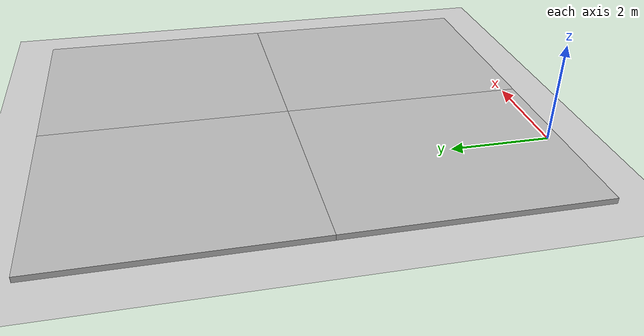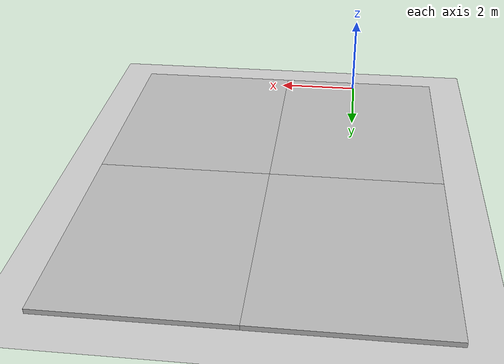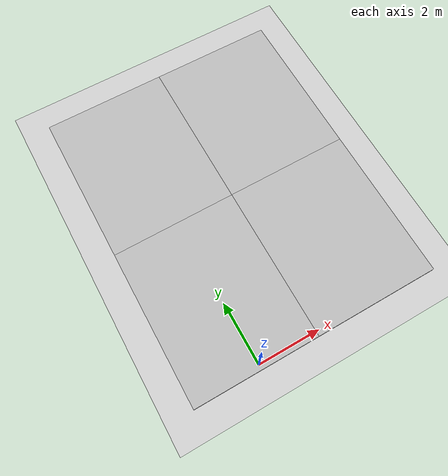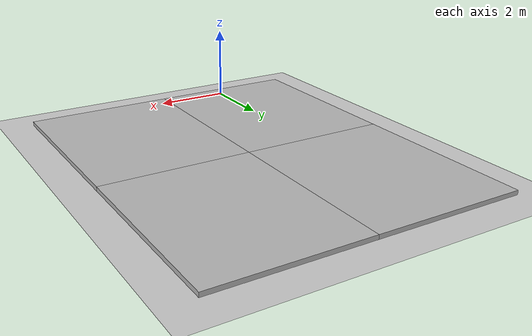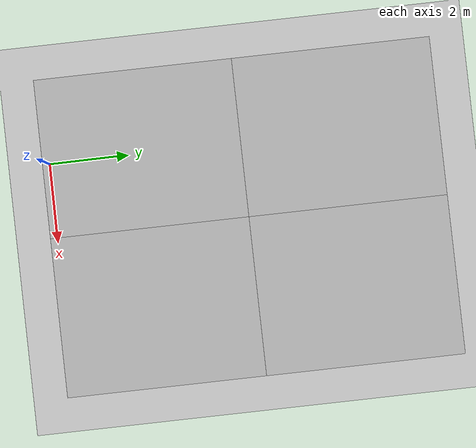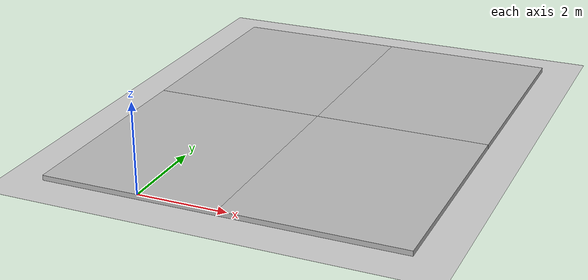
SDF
<sdf version="1.6">
 <world name="default">
  <model name="ground_plane">
   <static>1</static>
   <link name="link">
    <collision name="collision">
     <geometry><plane><normal>0 0 1</normal><size>100 100</size></plane></geometry>
     <surface><friction><ode><mu>100</mu><mu2>50</mu2></ode></friction></surface>
    </collision>
    <visual name="visual">
     <cast_shadows>0</cast_shadows>
     <geometry><plane><normal>0 0 1</normal><size>100 100</size></plane></geometry>
     <material>
      <script><uri>file://media/materials/scripts/gazebo.material</uri><name>Gazebo/Grey</name></script>
     </material>
    </visual>
   </link>
  </model>
  <model name="small_plant_0">
   <pose>4 2.00183 -5886.19 0 -0 0</pose>
   <link name="link_0">
    <pose>4 2.00183 0.110674 0 -0 0</pose>
    <inertial>
     <inertia><ixx>1</ixx><ixy>0</ixy><ixz>0</ixz><iyy>1</iyy><iyz>0</iyz><izz>1</izz></inertia>
     <mass>1</mass>
    </inertial>
   </link>
  </model>
  <model name="small_plant_1">
   <pose>4.2027 2.00204 -5886.19 0 -0 0</pose>
   <link name="link_0">
    <pose>4.2027 2.00204 0.110674 0 -0 0</pose>
    <inertial>
     <inertia><ixx>1</ixx><ixy>0</ixy><ixz>0</ixz><iyy>1</iyy><iyz>0</iyz><izz>1</izz></inertia>
     <mass>1</mass>
    </inertial>
   </link>
  </model>
  <model name="small_plant_2">
   <pose>4.40541 2.00441 -5885.85 0 -0 0</pose>
   <link name="link_0">
    <pose>4.40541 2.00441 0.110674 0 -0 0</pose>
    <inertial>
     <inertia><ixx>1</ixx><ixy>0</ixy><ixz>0</ixz><iyy>1</iyy><iyz>0</iyz><izz>1</izz></inertia>
     <mass>1</mass>
    </inertial>
   </link>
  </model>
  <model name="small_plant_3">
   <pose>4.60811 2.00125 -5885.51 0 -0 0</pose>
   <link name="link_0">
    <pose>4.60811 2.00125 0.110674 0 -0 0</pose>
    <inertial>
     <inertia><ixx>1</ixx><ixy>0</ixy><ixz>0</ixz><iyy>1</iyy><iyz>0</iyz><izz>1</izz></inertia>
     <mass>1</mass>
    </inertial>
   </link>
  </model>
  <model name="small_plant_4">
   <pose>4.81081 2.00254 -5885.17 0 -0 0</pose>
   <link name="link_0">
    <pose>4.81081 2.00254 0.110674 0 -0 0</pose>
    <inertial>
     <inertia><ixx>1</ixx><ixy>0</ixy><ixz>0</ixz><iyy>1</iyy><iyz>0</iyz><izz>1</izz></inertia>
     <mass>1</mass>
    </inertial>
   </link>
  </model>
  <model name="small_plant_5">
   <pose>5.01351 2.00033 -5884.83 0 -0 0</pose>
   <link name="link_0">
    <pose>5.01351 2.00033 0.110674 0 -0 0</pose>
    <inertial>
     <inertia><ixx>1</ixx><ixy>0</ixy><ixz>0</ixz><iyy>1</iyy><iyz>0</iyz><izz>1</izz></inertia>
     <mass>1</mass>
    </inertial>
   </link>
  </model>
  <model name="small_plant_6">
   <pose>5.21622 2.00339 -5884.83 0 -0 0</pose>
   <link name="link_0">
    <pose>5.21622 2.00339 0.110674 0 -0 0</pose>
    <inertial>
     <inertia><ixx>1</ixx><ixy>0</ixy><ixz>0</ixz><iyy>1</iyy><iyz>0</iyz><izz>1</izz></inertia>
     <mass>1</mass>
    </inertial>
   </link>
  </model>
  <model name="small_plant_7">
   <pose>5.41892 2.00548 -5884.83 0 -0 0</pose>
   <link name="link_0">
    <pose>5.41892 2.00548 0.110674 0 -0 0</pose>
    <inertial>
     <inertia><ixx>1</ixx><ixy>0</ixy><ixz>0</ixz><iyy>1</iyy><iyz>0</iyz><izz>1</izz></inertia>
     <mass>1</mass>
    </inertial>
   </link>
  </model>
  <model name="small_plant_8">
   <pose>5.62162 2.00516 -5884.49 0 -0 0</pose>
   <link name="link_0">
    <pose>5.62162 2.00516 0.110674 0 -0 0</pose>
    <inertial>
     <inertia><ixx>1</ixx><ixy>0</ixy><ixz>0</ixz><iyy>1</iyy><iyz>0</iyz><izz>1</izz></inertia>
     <mass>1</mass>
    </inertial>
   </link>
  </model>
  <model name="small_plant_9">
   <pose>5.82432 2.00312 -5884.49 0 -0 0</pose>
   <link name="link_0">
    <pose>5.82432 2.00312 0.110674 0 -0 0</pose>
    <inertial>
     <inertia><ixx>1</ixx><ixy>0</ixy><ixz>0</ixz><iyy>1</iyy><iyz>0</iyz><izz>1</izz></inertia>
     <mass>1</mass>
    </inertial>
   </link>
  </model>
  <model name="small_plant_10">
   <pose>6.02703 2.00351 -5886.19 0 -0 0</pose>
   <link name="link_0">
    <pose>6.02703 2.00351 0.110674 0 -0 0</pose>
    <inertial>
     <inertia><ixx>1</ixx><ixy>0</ixy><ixz>0</ixz><iyy>1</iyy><iyz>0</iyz><izz>1</izz></inertia>
     <mass>1</mass>
    </inertial>
   </link>
  </model>
  <model name="small_plant_75">
   <pose>4 2.70716 -5884.83 0 -0 0</pose>
   <link name="link_0">
    <pose>4 2.70716 0.110674 0 -0 0</pose>
    <inertial>
     <inertia><ixx>1</ixx><ixy>0</ixy><ixz>0</ixz><iyy>1</iyy><iyz>0</iyz><izz>1</izz></inertia>
     <mass>1</mass>
    </inertial>
   </link>
  </model>
  <model name="small_plant_76">
   <pose>4.2027 2.70205 -5884.49 0 -0 0</pose>
   <link name="link_0">
    <pose>4.2027 2.70205 0.110674 0 -0 0</pose>
    <inertial>
     <inertia><ixx>1</ixx><ixy>0</ixy><ixz>0</ixz><iyy>1</iyy><iyz>0</iyz><izz>1</izz></inertia>
     <mass>1</mass>
    </inertial>
   </link>
  </model>
  <model name="small_plant_77">
   <pose>4.40541 2.70926 -5884.49 0 -0 0</pose>
   <link name="link_0">
    <pose>4.40541 2.70926 0.110674 0 -0 0</pose>
    <inertial>
     <inertia><ixx>1</ixx><ixy>0</ixy><ixz>0</ixz><iyy>1</iyy><iyz>0</iyz><izz>1</izz></inertia>
     <mass>1</mass>
    </inertial>
   </link>
  </model>
  <model name="small_plant_78">
   <pose>4.60811 2.70181 -5884.49 0 -0 0</pose>
   <link name="link_0">
    <pose>4.60811 2.70181 0.110674 0 -0 0</pose>
    <inertial>
     <inertia><ixx>1</ixx><ixy>0</ixy><ixz>0</ixz><iyy>1</iyy><iyz>0</iyz><izz>1</izz></inertia>
     <mass>1</mass>
    </inertial>
   </link>
  </model>
  <model name="small_plant_79">
   <pose>4.81081 2.70347 -5884.49 0 -0 0</pose>
   <link name="link_0">
    <pose>4.81081 2.70347 0.110674 0 -0 0</pose>
    <inertial>
     <inertia><ixx>1</ixx><ixy>0</ixy><ixz>0</ixz><iyy>1</iyy><iyz>0</iyz><izz>1</izz></inertia>
     <mass>1</mass>
    </inertial>
   </link>
  </model>
  <model name="small_plant_80">
   <pose>5.01351 2.70742 -5884.49 0 -0 0</pose>
   <link name="link_0">
    <pose>5.01351 2.70742 0.110674 0 -0 0</pose>
    <inertial>
     <inertia><ixx>1</ixx><ixy>0</ixy><ixz>0</ixz><iyy>1</iyy><iyz>0</iyz><izz>1</izz></inertia>
     <mass>1</mass>
    </inertial>
   </link>
  </model>
  <model name="small_plant_81">
   <pose>5.21622 2.70363 -5884.49 0 -0 0</pose>
   <link name="link_0">
    <pose>5.21622 2.70363 0.110674 0 -0 0</pose>
    <inertial>
     <inertia><ixx>1</ixx><ixy>0</ixy><ixz>0</ixz><iyy>1</iyy><iyz>0</iyz><izz>1</izz></inertia>
     <mass>1</mass>
    </inertial>
   </link>
  </model>
  <model name="small_plant_82">
   <pose>5.41892 2.70119 -5884.49 0 -0 0</pose>
   <link name="link_0">
    <pose>5.41892 2.70119 0.110674 0 -0 0</pose>
    <inertial>
     <inertia><ixx>1</ixx><ixy>0</ixy><ixz>0</ixz><iyy>1</iyy><iyz>0</iyz><izz>1</izz></inertia>
     <mass>1</mass>
    </inertial>
   </link>
  </model>
  <model name="small_plant_83">
   <pose>5.62162 2.70089 -5884.49 0 -0 0</pose>
   <link name="link_0">
    <pose>5.62162 2.70089 0.110674 0 -0 0</pose>
    <inertial>
     <inertia><ixx>1</ixx><ixy>0</ixy><ixz>0</ixz><iyy>1</iyy><iyz>0</iyz><izz>1</izz></inertia>
     <mass>1</mass>
    </inertial>
   </link>
  </model>
  <model name="small_plant_84">
   <pose>5.82432 2.70942 -5884.49 0 -0 0</pose>
   <link name="link_0">
    <pose>5.82432 2.70942 0.110674 0 -0 0</pose>
    <inertial>
     <inertia><ixx>1</ixx><ixy>0</ixy><ixz>0</ixz><iyy>1</iyy><iyz>0</iyz><izz>1</izz></inertia>
     <mass>1</mass>
    </inertial>
   </link>
  </model>
  <model name="small_plant_85">
   <pose>6.02703 2.70123 -5884.49 0 -0 0</pose>
   <link name="link_0">
    <pose>6.02703 2.70123 0.110674 0 -0 0</pose>
    <inertial>
     <inertia><ixx>1</ixx><ixy>0</ixy><ixz>0</ixz><iyy>1</iyy><iyz>0</iyz><izz>1</izz></inertia>
     <mass>1</mass>
    </inertial>
   </link>
  </model>
  <model name="small_plant_150">
   <pose>4 3.40457 -5886.19 0 -0 0</pose>
   <link name="link_0">
    <pose>4 3.40457 0.110674 0 -0 0</pose>
    <inertial>
     <inertia><ixx>1</ixx><ixy>0</ixy><ixz>0</ixz><iyy>1</iyy><iyz>0</iyz><izz>1</izz></inertia>
     <mass>1</mass>
    </inertial>
   </link>
  </model>
  <model name="small_plant_151">
   <pose>4.2027 3.40583 -5886.19 0 -0 0</pose>
   <link name="link_0">
    <pose>4.2027 3.40583 0.110674 0 -0 0</pose>
    <inertial>
     <inertia><ixx>1</ixx><ixy>0</ixy><ixz>0</ixz><iyy>1</iyy><iyz>0</iyz><izz>1</izz></inertia>
     <mass>1</mass>
    </inertial>
   </link>
  </model>
  <model name="small_plant_152">
   <pose>4.40541 3.40168 -5886.19 0 -0 0</pose>
   <link name="link_0">
    <pose>4.40541 3.40168 0.110674 0 -0 0</pose>
    <inertial>
     <inertia><ixx>1</ixx><ixy>0</ixy><ixz>0</ixz><iyy>1</iyy><iyz>0</iyz><izz>1</izz></inertia>
     <mass>1</mass>
    </inertial>
   </link>
  </model>
  <model name="small_plant_153">
   <pose>4.60811 3.40209 -5886.19 0 -0 0</pose>
   <link name="link_0">
    <pose>4.60811 3.40209 0.110674 0 -0 0</pose>
    <inertial>
     <inertia><ixx>1</ixx><ixy>0</ixy><ixz>0</ixz><iyy>1</iyy><iyz>0</iyz><izz>1</izz></inertia>
     <mass>1</mass>
    </inertial>
   </link>
  </model>
  <model name="small_plant_154">
   <pose>4.81081 3.40303 -5886.19 0 -0 0</pose>
   <link name="link_0">
    <pose>4.81081 3.40303 0.110674 0 -0 0</pose>
    <inertial>
     <inertia><ixx>1</ixx><ixy>0</ixy><ixz>0</ixz><iyy>1</iyy><iyz>0</iyz><izz>1</izz></inertia>
     <mass>1</mass>
    </inertial>
   </link>
  </model>
  <model name="small_plant_155">
   <pose>5.01351 3.40387 -5886.19 0 -0 0</pose>
   <link name="link_0">
    <pose>5.01351 3.40387 0.110674 0 -0 0</pose>
    <inertial>
     <inertia><ixx>1</ixx><ixy>0</ixy><ixz>0</ixz><iyy>1</iyy><iyz>0</iyz><izz>1</izz></inertia>
     <mass>1</mass>
    </inertial>
   </link>
  </model>
  <model name="small_plant_156">
   <pose>5.21622 3.4012 -5886.19 0 -0 0</pose>
   <link name="link_0">
    <pose>5.21622 3.4012 0.110674 0 -0 0</pose>
    <inertial>
     <inertia><ixx>1</ixx><ixy>0</ixy><ixz>0</ixz><iyy>1</iyy><iyz>0</iyz><izz>1</izz></inertia>
     <mass>1</mass>
    </inertial>
   </link>
  </model>
  <model name="small_plant_157">
   <pose>5.41892 3.40115 -5885.85 0 -0 0</pose>
   <link name="link_0">
    <pose>5.41892 3.40115 0.110674 0 -0 0</pose>
    <inertial>
     <inertia><ixx>1</ixx><ixy>0</ixy><ixz>0</ixz><iyy>1</iyy><iyz>0</iyz><izz>1</izz></inertia>
     <mass>1</mass>
    </inertial>
   </link>
  </model>
  <model name="small_plant_158">
   <pose>5.62162 3.4 -5885.85 0 -0 0</pose>
   <link name="link_0">
    <pose>5.62162 3.4 0.110674 0 -0 0</pose>
    <inertial>
     <inertia><ixx>1</ixx><ixy>0</ixy><ixz>0</ixz><iyy>1</iyy><iyz>0</iyz><izz>1</izz></inertia>
     <mass>1</mass>
    </inertial>
   </link>
  </model>
  <model name="small_plant_159">
   <pose>5.82432 3.40389 -5885.85 0 -0 0</pose>
   <link name="link_0">
    <pose>5.82432 3.40389 0.110674 0 -0 0</pose>
    <inertial>
     <inertia><ixx>1</ixx><ixy>0</ixy><ixz>0</ixz><iyy>1</iyy><iyz>0</iyz><izz>1</izz></inertia>
     <mass>1</mass>
    </inertial>
   </link>
  </model>
  <model name="small_plant_160">
   <pose>6.02703 3.4002 -5885.85 0 -0 0</pose>
   <link name="link_0">
    <pose>6.02703 3.4002 0.110674 0 -0 0</pose>
    <inertial>
     <inertia><ixx>1</ixx><ixy>0</ixy><ixz>0</ixz><iyy>1</iyy><iyz>0</iyz><izz>1</izz></inertia>
     <mass>1</mass>
    </inertial>
   </link>
  </model>
  <model name="small_plant_225">
   <pose>4 4.10625 -5886.1 0 -0 0</pose>
   <link name="link_0">
    <pose>4 4.10625 0.110674 0 -0 0</pose>
    <inertial>
     <inertia><ixx>1</ixx><ixy>0</ixy><ixz>0</ixz><iyy>1</iyy><iyz>0</iyz><izz>1</izz></inertia>
     <mass>1</mass>
    </inertial>
   </link>
  </model>
  <model name="small_plant_226">
   <pose>4.2027 4.10245 -5886.1 0 -0 0</pose>
   <link name="link_0">
    <pose>4.2027 4.10245 0.110674 0 -0 0</pose>
    <inertial>
     <inertia><ixx>1</ixx><ixy>0</ixy><ixz>0</ixz><iyy>1</iyy><iyz>0</iyz><izz>1</izz></inertia>
     <mass>1</mass>
    </inertial>
   </link>
  </model>
  <model name="small_plant_227">
   <pose>4.40541 4.10688 -5886.1 0 -0 0</pose>
   <link name="link_0">
    <pose>4.40541 4.10688 0.110674 0 -0 0</pose>
    <inertial>
     <inertia><ixx>1</ixx><ixy>0</ixy><ixz>0</ixz><iyy>1</iyy><iyz>0</iyz><izz>1</izz></inertia>
     <mass>1</mass>
    </inertial>
   </link>
  </model>
  <model name="small_plant_228">
   <pose>4.60811 4.10255 -5886.1 0 -0 0</pose>
   <link name="link_0">
    <pose>4.60811 4.10255 0.110674 0 -0 0</pose>
    <inertial>
     <inertia><ixx>1</ixx><ixy>0</ixy><ixz>0</ixz><iyy>1</iyy><iyz>0</iyz><izz>1</izz></inertia>
     <mass>1</mass>
    </inertial>
   </link>
  </model>
  <model name="small_plant_229">
   <pose>4.81081 4.10349 -5886.1 0 -0 0</pose>
   <link name="link_0">
    <pose>4.81081 4.10349 0.110674 0 -0 0</pose>
    <inertial>
     <inertia><ixx>1</ixx><ixy>0</ixy><ixz>0</ixz><iyy>1</iyy><iyz>0</iyz><izz>1</izz></inertia>
     <mass>1</mass>
    </inertial>
   </link>
  </model>
  <model name="small_plant_230">
   <pose>5.01351 4.101 -5886.1 0 -0 0</pose>
   <link name="link_0">
    <pose>5.01351 4.101 0.110674 0 -0 0</pose>
    <inertial>
     <inertia><ixx>1</ixx><ixy>0</ixy><ixz>0</ixz><iyy>1</iyy><iyz>0</iyz><izz>1</izz></inertia>
     <mass>1</mass>
    </inertial>
   </link>
  </model>
  <model name="small_plant_231">
   <pose>5.21622 4.10013 -5886.1 0 -0 0</pose>
   <link name="link_0">
    <pose>5.21622 4.10013 0.110674 0 -0 0</pose>
    <inertial>
     <inertia><ixx>1</ixx><ixy>0</ixy><ixz>0</ixz><iyy>1</iyy><iyz>0</iyz><izz>1</izz></inertia>
     <mass>1</mass>
    </inertial>
   </link>
  </model>
  <model name="small_plant_232">
   <pose>5.41892 4.10222 -5886.1 0 -0 0</pose>
   <link name="link_0">
    <pose>5.41892 4.10222 0.110674 0 -0 0</pose>
    <inertial>
     <inertia><ixx>1</ixx><ixy>0</ixy><ixz>0</ixz><iyy>1</iyy><iyz>0</iyz><izz>1</izz></inertia>
     <mass>1</mass>
    </inertial>
   </link>
  </model>
  <model name="small_plant_233">
   <pose>5.62162 4.10135 -5886.1 0 -0 0</pose>
   <link name="link_0">
    <pose>5.62162 4.10135 0.110674 0 -0 0</pose>
    <inertial>
     <inertia><ixx>1</ixx><ixy>0</ixy><ixz>0</ixz><iyy>1</iyy><iyz>0</iyz><izz>1</izz></inertia>
     <mass>1</mass>
    </inertial>
   </link>
  </model>
  <model name="small_plant_234">
   <pose>5.82432 4.1049 -5886.1 0 -0 0</pose>
   <link name="link_0">
    <pose>5.82432 4.1049 0.110674 0 -0 0</pose>
    <inertial>
     <inertia><ixx>1</ixx><ixy>0</ixy><ixz>0</ixz><iyy>1</iyy><iyz>0</iyz><izz>1</izz></inertia>
     <mass>1</mass>
    </inertial>
   </link>
  </model>
  <model name="small_plant_235">
   <pose>6.02703 4.10365 -5886.1 0 -0 0</pose>
   <link name="link_0">
    <pose>6.02703 4.10365 0.110674 0 -0 0</pose>
    <inertial>
     <inertia><ixx>1</ixx><ixy>0</ixy><ixz>0</ixz><iyy>1</iyy><iyz>0</iyz><izz>1</izz></inertia>
     <mass>1</mass>
    </inertial>
   </link>
  </model>
  <model name="small_plant_300">
   <pose>4 4.80854 -5885.85 0 -0 0</pose>
   <link name="link_0">
    <pose>4 4.80854 0.110674 0 -0 0</pose>
    <inertial>
     <inertia><ixx>1</ixx><ixy>0</ixy><ixz>0</ixz><iyy>1</iyy><iyz>0</iyz><izz>1</izz></inertia>
     <mass>1</mass>
    </inertial>
   </link>
  </model>
  <model name="small_plant_301">
   <pose>4.2027 4.80301 -5885.85 0 -0 0</pose>
   <link name="link_0">
    <pose>4.2027 4.80301 0.110674 0 -0 0</pose>
    <inertial>
     <inertia><ixx>1</ixx><ixy>0</ixy><ixz>0</ixz><iyy>1</iyy><iyz>0</iyz><izz>1</izz></inertia>
     <mass>1</mass>
    </inertial>
   </link>
  </model>
  <model name="small_plant_302">
   <pose>4.40541 4.80307 -5885.85 0 -0 0</pose>
   <link name="link_0">
    <pose>4.40541 4.80307 0.110674 0 -0 0</pose>
    <inertial>
     <inertia><ixx>1</ixx><ixy>0</ixy><ixz>0</ixz><iyy>1</iyy><iyz>0</iyz><izz>1</izz></inertia>
     <mass>1</mass>
    </inertial>
   </link>
  </model>
  <model name="small_plant_303">
   <pose>4.60811 4.80268 -5885.85 0 -0 0</pose>
   <link name="link_0">
    <pose>4.60811 4.80268 0.110674 0 -0 0</pose>
    <inertial>
     <inertia><ixx>1</ixx><ixy>0</ixy><ixz>0</ixz><iyy>1</iyy><iyz>0</iyz><izz>1</izz></inertia>
     <mass>1</mass>
    </inertial>
   </link>
  </model>
  <model name="small_plant_304">
   <pose>4.81081 4.80316 -5885.85 0 -0 0</pose>
   <link name="link_0">
    <pose>4.81081 4.80316 0.110674 0 -0 0</pose>
    <inertial>
     <inertia><ixx>1</ixx><ixy>0</ixy><ixz>0</ixz><iyy>1</iyy><iyz>0</iyz><izz>1</izz></inertia>
     <mass>1</mass>
    </inertial>
   </link>
  </model>
  <model name="small_plant_305">
   <pose>5.01351 4.80158 -5885.85 0 -0 0</pose>
   <link name="link_0">
    <pose>5.01351 4.80158 0.110674 0 -0 0</pose>
    <inertial>
     <inertia><ixx>1</ixx><ixy>0</ixy><ixz>0</ixz><iyy>1</iyy><iyz>0</iyz><izz>1</izz></inertia>
     <mass>1</mass>
    </inertial>
   </link>
  </model>
  <model name="small_plant_306">
   <pose>5.21622 4.80632 -5885.85 0 -0 0</pose>
   <link name="link_0">
    <pose>5.21622 4.80632 0.110674 0 -0 0</pose>
    <inertial>
     <inertia><ixx>1</ixx><ixy>0</ixy><ixz>0</ixz><iyy>1</iyy><iyz>0</iyz><izz>1</izz></inertia>
     <mass>1</mass>
    </inertial>
   </link>
  </model>
  <model name="small_plant_307">
   <pose>5.41892 4.80046 -5885.85 0 -0 0</pose>
   <link name="link_0">
    <pose>5.41892 4.80046 0.110674 0 -0 0</pose>
    <inertial>
     <inertia><ixx>1</ixx><ixy>0</ixy><ixz>0</ixz><iyy>1</iyy><iyz>0</iyz><izz>1</izz></inertia>
     <mass>1</mass>
    </inertial>
   </link>
  </model>
  <model name="small_plant_308">
   <pose>5.62162 4.80065 -5885.85 0 -0 0</pose>
   <link name="link_0">
    <pose>5.62162 4.80065 0.110674 0 -0 0</pose>
    <inertial>
     <inertia><ixx>1</ixx><ixy>0</ixy><ixz>0</ixz><iyy>1</iyy><iyz>0</iyz><izz>1</izz></inertia>
     <mass>1</mass>
    </inertial>
   </link>
  </model>
  <model name="small_plant_309">
   <pose>5.82432 4.80119 -5885.85 0 -0 0</pose>
   <link name="link_0">
    <pose>5.82432 4.80119 0.110674 0 -0 0</pose>
    <inertial>
     <inertia><ixx>1</ixx><ixy>0</ixy><ixz>0</ixz><iyy>1</iyy><iyz>0</iyz><izz>1</izz></inertia>
     <mass>1</mass>
    </inertial>
   </link>
  </model>
  <model name="small_plant_310">
   <pose>6.02703 4.8037 -5885.85 0 -0 0</pose>
   <link name="link_0">
    <pose>6.02703 4.8037 0.110674 0 -0 0</pose>
    <inertial>
     <inertia><ixx>1</ixx><ixy>0</ixy><ixz>0</ixz><iyy>1</iyy><iyz>0</iyz><izz>1</izz></inertia>
     <mass>1</mass>
    </inertial>
   </link>
  </model>
  <model name="small_plant_375">
   <pose>4 5.50126 -5885.51 0 -0 0</pose>
   <link name="link_0">
    <pose>4 5.50126 0.110674 0 -0 0</pose>
    <inertial>
     <inertia><ixx>1</ixx><ixy>0</ixy><ixz>0</ixz><iyy>1</iyy><iyz>0</iyz><izz>1</izz></inertia>
     <mass>1</mass>
    </inertial>
   </link>
  </model>
  <model name="small_plant_376">
   <pose>4.2027 5.50147 -5885.51 0 -0 0</pose>
   <link name="link_0">
    <pose>4.2027 5.50147 0.110674 0 -0 0</pose>
    <inertial>
     <inertia><ixx>1</ixx><ixy>0</ixy><ixz>0</ixz><iyy>1</iyy><iyz>0</iyz><izz>1</izz></inertia>
     <mass>1</mass>
    </inertial>
   </link>
  </model>
  <model name="small_plant_377">
   <pose>4.40541 5.50069 -5885.51 0 -0 0</pose>
   <link name="link_0">
    <pose>4.40541 5.50069 0.110674 0 -0 0</pose>
    <inertial>
     <inertia><ixx>1</ixx><ixy>0</ixy><ixz>0</ixz><iyy>1</iyy><iyz>0</iyz><izz>1</izz></inertia>
     <mass>1</mass>
    </inertial>
   </link>
  </model>
  <model name="small_plant_378">
   <pose>4.60811 5.50479 -5885.51 0 -0 0</pose>
   <link name="link_0">
    <pose>4.60811 5.50479 0.110674 0 -0 0</pose>
    <inertial>
     <inertia><ixx>1</ixx><ixy>0</ixy><ixz>0</ixz><iyy>1</iyy><iyz>0</iyz><izz>1</izz></inertia>
     <mass>1</mass>
    </inertial>
   </link>
  </model>
  <model name="small_plant_379">
   <pose>4.81081 5.50108 -5885.51 0 -0 0</pose>
   <link name="link_0">
    <pose>4.81081 5.50108 0.110674 0 -0 0</pose>
    <inertial>
     <inertia><ixx>1</ixx><ixy>0</ixy><ixz>0</ixz><iyy>1</iyy><iyz>0</iyz><izz>1</izz></inertia>
     <mass>1</mass>
    </inertial>
   </link>
  </model>
  <model name="small_plant_380">
   <pose>5.01351 5.50279 -5885.51 0 -0 0</pose>
   <link name="link_0">
    <pose>5.01351 5.50279 0.110674 0 -0 0</pose>
    <inertial>
     <inertia><ixx>1</ixx><ixy>0</ixy><ixz>0</ixz><iyy>1</iyy><iyz>0</iyz><izz>1</izz></inertia>
     <mass>1</mass>
    </inertial>
   </link>
  </model>
  <model name="small_plant_381">
   <pose>5.21622 5.50357 -5885.51 0 -0 0</pose>
   <link name="link_0">
    <pose>5.21622 5.50357 0.110674 0 -0 0</pose>
    <inertial>
     <inertia><ixx>1</ixx><ixy>0</ixy><ixz>0</ixz><iyy>1</iyy><iyz>0</iyz><izz>1</izz></inertia>
     <mass>1</mass>
    </inertial>
   </link>
  </model>
  <model name="small_plant_382">
   <pose>5.41892 5.50469 -5885.51 0 -0 0</pose>
   <link name="link_0">
    <pose>5.41892 5.50469 0.110674 0 -0 0</pose>
    <inertial>
     <inertia><ixx>1</ixx><ixy>0</ixy><ixz>0</ixz><iyy>1</iyy><iyz>0</iyz><izz>1</izz></inertia>
     <mass>1</mass>
    </inertial>
   </link>
  </model>
  <model name="small_plant_383">
   <pose>5.62162 5.50415 -5885.51 0 -0 0</pose>
   <link name="link_0">
    <pose>5.62162 5.50415 0.110674 0 -0 0</pose>
    <inertial>
     <inertia><ixx>1</ixx><ixy>0</ixy><ixz>0</ixz><iyy>1</iyy><iyz>0</iyz><izz>1</izz></inertia>
     <mass>1</mass>
    </inertial>
   </link>
  </model>
  <model name="small_plant_384">
   <pose>5.82432 5.50036 -5885.51 0 -0 0</pose>
   <link name="link_0">
    <pose>5.82432 5.50036 0.110674 0 -0 0</pose>
    <inertial>
     <inertia><ixx>1</ixx><ixy>0</ixy><ixz>0</ixz><iyy>1</iyy><iyz>0</iyz><izz>1</izz></inertia>
     <mass>1</mass>
    </inertial>
   </link>
  </model>
  <model name="small_plant_385">
   <pose>6.02703 5.50645 -5885.51 0 -0 0</pose>
   <link name="link_0">
    <pose>6.02703 5.50645 0.110674 0 -0 0</pose>
    <inertial>
     <inertia><ixx>1</ixx><ixy>0</ixy><ixz>0</ixz><iyy>1</iyy><iyz>0</iyz><izz>1</izz></inertia>
     <mass>1</mass>
    </inertial>
   </link>
  </model>
  <model name="small_plant_0">
   <pose>4 2.00183 -5886.19 0 -0 0</pose>
   <link name="link_0">
    <pose>4 2.00183 0.110674 0 -0 0</pose>
    <inertial>
     <inertia><ixx>1</ixx><ixy>0</ixy><ixz>0</ixz><iyy>1</iyy><iyz>0</iyz><izz>1</izz></inertia>
     <mass>1</mass>
    </inertial>
   </link>
  </model>
  <model name="small_plant_1">
   <pose>4.2027 2.00204 -5886.19 0 -0 0</pose>
   <link name="link_0">
    <pose>4.2027 2.00204 0.110674 0 -0 0</pose>
    <inertial>
     <inertia><ixx>1</ixx><ixy>0</ixy><ixz>0</ixz><iyy>1</iyy><iyz>0</iyz><izz>1</izz></inertia>
     <mass>1</mass>
    </inertial>
   </link>
  </model>
  <model name="small_plant_2">
   <pose>4.40541 2.00441 -5885.85 0 -0 0</pose>
   <link name="link_0">
    <pose>4.40541 2.00441 0.110674 0 -0 0</pose>
    <inertial>
     <inertia><ixx>1</ixx><ixy>0</ixy><ixz>0</ixz><iyy>1</iyy><iyz>0</iyz><izz>1</izz></inertia>
     <mass>1</mass>
    </inertial>
   </link>
  </model>
  <model name="small_plant_3">
   <pose>4.60811 2.00125 -5885.51 0 -0 0</pose>
   <link name="link_0">
    <pose>4.60811 2.00125 0.110674 0 -0 0</pose>
    <inertial>
     <inertia><ixx>1</ixx><ixy>0</ixy><ixz>0</ixz><iyy>1</iyy><iyz>0</iyz><izz>1</izz></inertia>
     <mass>1</mass>
    </inertial>
   </link>
  </model>
  <model name="small_plant_4">
   <pose>4.81081 2.00254 -5885.17 0 -0 0</pose>
   <link name="link_0">
    <pose>4.81081 2.00254 0.110674 0 -0 0</pose>
    <inertial>
     <inertia><ixx>1</ixx><ixy>0</ixy><ixz>0</ixz><iyy>1</iyy><iyz>0</iyz><izz>1</izz></inertia>
     <mass>1</mass>
    </inertial>
   </link>
  </model>
  <model name="small_plant_5">
   <pose>5.01351 2.00033 -5884.83 0 -0 0</pose>
   <link name="link_0">
    <pose>5.01351 2.00033 0.110674 0 -0 0</pose>
    <inertial>
     <inertia><ixx>1</ixx><ixy>0</ixy><ixz>0</ixz><iyy>1</iyy><iyz>0</iyz><izz>1</izz></inertia>
     <mass>1</mass>
    </inertial>
   </link>
  </model>
  <model name="small_plant_6">
   <pose>5.21622 2.00339 -5884.83 0 -0 0</pose>
   <link name="link_0">
    <pose>5.21622 2.00339 0.110674 0 -0 0</pose>
    <inertial>
     <inertia><ixx>1</ixx><ixy>0</ixy><ixz>0</ixz><iyy>1</iyy><iyz>0</iyz><izz>1</izz></inertia>
     <mass>1</mass>
    </inertial>
   </link>
  </model>
  <model name="small_plant_7">
   <pose>5.41892 2.00548 -5884.83 0 -0 0</pose>
   <link name="link_0">
    <pose>5.41892 2.00548 0.110674 0 -0 0</pose>
    <inertial>
     <inertia><ixx>1</ixx><ixy>0</ixy><ixz>0</ixz><iyy>1</iyy><iyz>0</iyz><izz>1</izz></inertia>
     <mass>1</mass>
    </inertial>
   </link>
  </model>
  <model name="small_plant_8">
   <pose>5.62162 2.00516 -5884.49 0 -0 0</pose>
   <link name="link_0">
    <pose>5.62162 2.00516 0.110674 0 -0 0</pose>
    <inertial>
     <inertia><ixx>1</ixx><ixy>0</ixy><ixz>0</ixz><iyy>1</iyy><iyz>0</iyz><izz>1</izz></inertia>
     <mass>1</mass>
    </inertial>
   </link>
  </model>
  <model name="small_plant_9">
   <pose>5.82432 2.00312 -5884.49 0 -0 0</pose>
   <link name="link_0">
    <pose>5.82432 2.00312 0.110674 0 -0 0</pose>
    <inertial>
     <inertia><ixx>1</ixx><ixy>0</ixy><ixz>0</ixz><iyy>1</iyy><iyz>0</iyz><izz>1</izz></inertia>
     <mass>1</mass>
    </inertial>
   </link>
  </model>
  <model name="small_plant_10">
   <pose>6.02703 2.00351 -5886.19 0 -0 0</pose>
   <link name="link_0">
    <pose>6.02703 2.00351 0.110674 0 -0 0</pose>
    <inertial>
     <inertia><ixx>1</ixx><ixy>0</ixy><ixz>0</ixz><iyy>1</iyy><iyz>0</iyz><izz>1</izz></inertia>
     <mass>1</mass>
    </inertial>
   </link>
  </model>
  <model name="small_plant_75">
   <pose>4 2.70716 -5884.83 0 -0 0</pose>
   <link name="link_0">
    <pose>4 2.70716 0.110674 0 -0 0</pose>
    <inertial>
     <inertia><ixx>1</ixx><ixy>0</ixy><ixz>0</ixz><iyy>1</iyy><iyz>0</iyz><izz>1</izz></inertia>
     <mass>1</mass>
    </inertial>
   </link>
  </model>
  <model name="small_plant_76">
   <pose>4.2027 2.70205 -5884.49 0 -0 0</pose>
   <link name="link_0">
    <pose>4.2027 2.70205 0.110674 0 -0 0</pose>
    <inertial>
     <inertia><ixx>1</ixx><ixy>0</ixy><ixz>0</ixz><iyy>1</iyy><iyz>0</iyz><izz>1</izz></inertia>
     <mass>1</mass>
    </inertial>
   </link>
  </model>
  <model name="small_plant_77">
   <pose>4.40541 2.70926 -5884.49 0 -0 0</pose>
   <link name="link_0">
    <pose>4.40541 2.70926 0.110674 0 -0 0</pose>
    <inertial>
     <inertia><ixx>1</ixx><ixy>0</ixy><ixz>0</ixz><iyy>1</iyy><iyz>0</iyz><izz>1</izz></inertia>
     <mass>1</mass>
    </inertial>
   </link>
  </model>
  <model name="small_plant_78">
   <pose>4.60811 2.70181 -5884.49 0 -0 0</pose>
   <link name="link_0">
    <pose>4.60811 2.70181 0.110674 0 -0 0</pose>
    <inertial>
     <inertia><ixx>1</ixx><ixy>0</ixy><ixz>0</ixz><iyy>1</iyy><iyz>0</iyz><izz>1</izz></inertia>
     <mass>1</mass>
    </inertial>
   </link>
  </model>
  <model name="small_plant_79">
   <pose>4.81081 2.70347 -5884.49 0 -0 0</pose>
   <link name="link_0">
    <pose>4.81081 2.70347 0.110674 0 -0 0</pose>
    <inertial>
     <inertia><ixx>1</ixx><ixy>0</ixy><ixz>0</ixz><iyy>1</iyy><iyz>0</iyz><izz>1</izz></inertia>
     <mass>1</mass>
    </inertial>
   </link>
  </model>
  <model name="small_plant_80">
   <pose>5.01351 2.70742 -5884.49 0 -0 0</pose>
   <link name="link_0">
    <pose>5.01351 2.70742 0.110674 0 -0 0</pose>
    <inertial>
     <inertia><ixx>1</ixx><ixy>0</ixy><ixz>0</ixz><iyy>1</iyy><iyz>0</iyz><izz>1</izz></inertia>
     <mass>1</mass>
    </inertial>
   </link>
  </model>
  <model name="small_plant_81">
   <pose>5.21622 2.70363 -5884.49 0 -0 0</pose>
   <link name="link_0">
    <pose>5.21622 2.70363 0.110674 0 -0 0</pose>
    <inertial>
     <inertia><ixx>1</ixx><ixy>0</ixy><ixz>0</ixz><iyy>1</iyy><iyz>0</iyz><izz>1</izz></inertia>
     <mass>1</mass>
    </inertial>
   </link>
  </model>
  <model name="small_plant_82">
   <pose>5.41892 2.70119 -5884.49 0 -0 0</pose>
   <link name="link_0">
    <pose>5.41892 2.70119 0.110674 0 -0 0</pose>
    <inertial>
     <inertia><ixx>1</ixx><ixy>0</ixy><ixz>0</ixz><iyy>1</iyy><iyz>0</iyz><izz>1</izz></inertia>
     <mass>1</mass>
    </inertial>
   </link>
  </model>
  <model name="small_plant_83">
   <pose>5.62162 2.70089 -5884.49 0 -0 0</pose>
   <link name="link_0">
    <pose>5.62162 2.70089 0.110674 0 -0 0</pose>
    <inertial>
     <inertia><ixx>1</ixx><ixy>0</ixy><ixz>0</ixz><iyy>1</iyy><iyz>0</iyz><izz>1</izz></inertia>
     <mass>1</mass>
    </inertial>
   </link>
  </model>
  <model name="small_plant_84">
   <pose>5.82432 2.70942 -5884.49 0 -0 0</pose>
   <link name="link_0">
    <pose>5.82432 2.70942 0.110674 0 -0 0</pose>
    <inertial>
     <inertia><ixx>1</ixx><ixy>0</ixy><ixz>0</ixz><iyy>1</iyy><iyz>0</iyz><izz>1</izz></inertia>
     <mass>1</mass>
    </inertial>
   </link>
  </model>
  <model name="small_plant_150">
   <pose>4 3.40457 -5886.19 0 -0 0</pose>
   <link name="link_0">
    <pose>4 3.40457 0.110674 0 -0 0</pose>
    <inertial>
     <inertia><ixx>1</ixx><ixy>0</ixy><ixz>0</ixz><iyy>1</iyy><iyz>0</iyz><izz>1</izz></inertia>
     <mass>1</mass>
    </inertial>
   </link>
  </model>
  <model name="small_plant_151">
   <pose>4.2027 3.40583 -5886.19 0 -0 0</pose>
   <link name="link_0">
    <pose>4.2027 3.40583 0.110674 0 -0 0</pose>
    <inertial>
     <inertia><ixx>1</ixx><ixy>0</ixy><ixz>0</ixz><iyy>1</iyy><iyz>0</iyz><izz>1</izz></inertia>
     <mass>1</mass>
    </inertial>
   </link>
  </model>
  <model name="small_plant_152">
   <pose>4.40541 3.40168 -5886.19 0 -0 0</pose>
   <link name="link_0">
    <pose>4.40541 3.40168 0.110674 0 -0 0</pose>
    <inertial>
     <inertia><ixx>1</ixx><ixy>0</ixy><ixz>0</ixz><iyy>1</iyy><iyz>0</iyz><izz>1</izz></inertia>
     <mass>1</mass>
    </inertial>
   </link>
  </model>
  <model name="small_plant_153">
   <pose>4.60811 3.40209 -5886.19 0 -0 0</pose>
   <link name="link_0">
    <pose>4.60811 3.40209 0.110674 0 -0 0</pose>
    <inertial>
     <inertia><ixx>1</ixx><ixy>0</ixy><ixz>0</ixz><iyy>1</iyy><iyz>0</iyz><izz>1</izz></inertia>
     <mass>1</mass>
    </inertial>
   </link>
  </model>
  <model name="small_plant_154">
   <pose>4.81081 3.40303 -5886.19 0 -0 0</pose>
   <link name="link_0">
    <pose>4.81081 3.40303 0.110674 0 -0 0</pose>
    <inertial>
     <inertia><ixx>1</ixx><ixy>0</ixy><ixz>0</ixz><iyy>1</iyy><iyz>0</iyz><izz>1</izz></inertia>
     <mass>1</mass>
    </inertial>
   </link>
  </model>
  <model name="small_plant_155">
   <pose>5.01351 3.40387 -5886.19 0 -0 0</pose>
   <link name="link_0">
    <pose>5.01351 3.40387 0.110674 0 -0 0</pose>
    <inertial>
     <inertia><ixx>1</ixx><ixy>0</ixy><ixz>0</ixz><iyy>1</iyy><iyz>0</iyz><izz>1</izz></inertia>
     <mass>1</mass>
    </inertial>
   </link>
  </model>
  <model name="small_plant_156">
   <pose>5.21622 3.4012 -5886.19 0 -0 0</pose>
   <link name="link_0">
    <pose>5.21622 3.4012 0.110674 0 -0 0</pose>
    <inertial>
     <inertia><ixx>1</ixx><ixy>0</ixy><ixz>0</ixz><iyy>1</iyy><iyz>0</iyz><izz>1</izz></inertia>
     <mass>1</mass>
    </inertial>
   </link>
  </model>
  <model name="small_plant_157">
   <pose>5.41892 3.40115 -5885.85 0 -0 0</pose>
   <link name="link_0">
    <pose>5.41892 3.40115 0.110674 0 -0 0</pose>
    <inertial>
     <inertia><ixx>1</ixx><ixy>0</ixy><ixz>0</ixz><iyy>1</iyy><iyz>0</iyz><izz>1</izz></inertia>
     <mass>1</mass>
    </inertial>
   </link>
  </model>
  <model name="small_plant_158">
   <pose>5.62162 3.4 -5885.85 0 -0 0</pose>
   <link name="link_0">
    <pose>5.62162 3.4 0.110674 0 -0 0</pose>
    <inertial>
     <inertia><ixx>1</ixx><ixy>0</ixy><ixz>0</ixz><iyy>1</iyy><iyz>0</iyz><izz>1</izz></inertia>
     <mass>1</mass>
    </inertial>
   </link>
  </model>
  <model name="small_plant_159">
   <pose>5.82432 3.40389 -5885.85 0 -0 0</pose>
   <link name="link_0">
    <pose>5.82432 3.40389 0.110674 0 -0 0</pose>
    <inertial>
     <inertia><ixx>1</ixx><ixy>0</ixy><ixz>0</ixz><iyy>1</iyy><iyz>0</iyz><izz>1</izz></inertia>
     <mass>1</mass>
    </inertial>
   </link>
  </model>
  <model name="small_plant_225">
   <pose>4 4.10625 -5886.1 0 -0 0</pose>
   <link name="link_0">
    <pose>4 4.10625 0.110674 0 -0 0</pose>
    <inertial>
     <inertia><ixx>1</ixx><ixy>0</ixy><ixz>0</ixz><iyy>1</iyy><iyz>0</iyz><izz>1</izz></inertia>
     <mass>1</mass>
    </inertial>
   </link>
  </model>
  <model name="small_plant_226">
   <pose>4.2027 4.10245 -5886.1 0 -0 0</pose>
   <link name="link_0">
    <pose>4.2027 4.10245 0.110674 0 -0 0</pose>
    <inertial>
     <inertia><ixx>1</ixx><ixy>0</ixy><ixz>0</ixz><iyy>1</iyy><iyz>0</iyz><izz>1</izz></inertia>
     <mass>1</mass>
    </inertial>
   </link>
  </model>
  <model name="small_plant_227">
   <pose>4.40541 4.10688 -5886.1 0 -0 0</pose>
   <link name="link_0">
    <pose>4.40541 4.10688 0.110674 0 -0 0</pose>
    <inertial>
     <inertia><ixx>1</ixx><ixy>0</ixy><ixz>0</ixz><iyy>1</iyy><iyz>0</iyz><izz>1</izz></inertia>
     <mass>1</mass>
    </inertial>
   </link>
  </model>
  <model name="small_plant_228">
   <pose>4.60811 4.10255 -5886.1 0 -0 0</pose>
   <link name="link_0">
    <pose>4.60811 4.10255 0.110674 0 -0 0</pose>
    <inertial>
     <inertia><ixx>1</ixx><ixy>0</ixy><ixz>0</ixz><iyy>1</iyy><iyz>0</iyz><izz>1</izz></inertia>
     <mass>1</mass>
    </inertial>
   </link>
  </model>
  <model name="small_plant_229">
   <pose>4.81081 4.10349 -5886.1 0 -0 0</pose>
   <link name="link_0">
    <pose>4.81081 4.10349 0.110674 0 -0 0</pose>
    <inertial>
     <inertia><ixx>1</ixx><ixy>0</ixy><ixz>0</ixz><iyy>1</iyy><iyz>0</iyz><izz>1</izz></inertia>
     <mass>1</mass>
    </inertial>
   </link>
  </model>
  <model name="small_plant_230">
   <pose>5.01351 4.101 -5886.1 0 -0 0</pose>
   <link name="link_0">
    <pose>5.01351 4.101 0.110674 0 -0 0</pose>
    <inertial>
     <inertia><ixx>1</ixx><ixy>0</ixy><ixz>0</ixz><iyy>1</iyy><iyz>0</iyz><izz>1</izz></inertia>
     <mass>1</mass>
    </inertial>
   </link>
  </model>
  <model name="small_plant_231">
   <pose>5.21622 4.10013 -5886.1 0 -0 0</pose>
   <link name="link_0">
    <pose>5.21622 4.10013 0.110674 0 -0 0</pose>
    <inertial>
     <inertia><ixx>1</ixx><ixy>0</ixy><ixz>0</ixz><iyy>1</iyy><iyz>0</iyz><izz>1</izz></inertia>
     <mass>1</mass>
    </inertial>
   </link>
  </model>
  <model name="small_plant_232">
   <pose>5.41892 4.10222 -5886.1 0 -0 0</pose>
   <link name="link_0">
    <pose>5.41892 4.10222 0.110674 0 -0 0</pose>
    <inertial>
     <inertia><ixx>1</ixx><ixy>0</ixy><ixz>0</ixz><iyy>1</iyy><iyz>0</iyz><izz>1</izz></inertia>
     <mass>1</mass>
    </inertial>
   </link>
  </model>
  <model name="small_plant_233">
   <pose>5.62162 4.10135 -5886.1 0 -0 0</pose>
   <link name="link_0">
    <pose>5.62162 4.10135 0.110674 0 -0 0</pose>
    <inertial>
     <inertia><ixx>1</ixx><ixy>0</ixy><ixz>0</ixz><iyy>1</iyy><iyz>0</iyz><izz>1</izz></inertia>
     <mass>1</mass>
    </inertial>
   </link>
  </model>
  <model name="small_plant_234">
   <pose>5.82432 4.1049 -5886.1 0 -0 0</pose>
   <link name="link_0">
    <pose>5.82432 4.1049 0.110674 0 -0 0</pose>
    <inertial>
     <inertia><ixx>1</ixx><ixy>0</ixy><ixz>0</ixz><iyy>1</iyy><iyz>0</iyz><izz>1</izz></inertia>
     <mass>1</mass>
    </inertial>
   </link>
  </model>
  <model name="small_plant_300">
   <pose>4 4.80854 -5885.85 0 -0 0</pose>
   <link name="link_0">
    <pose>4 4.80854 0.110674 0 -0 0</pose>
    <inertial>
     <inertia><ixx>1</ixx><ixy>0</ixy><ixz>0</ixz><iyy>1</iyy><iyz>0</iyz><izz>1</izz></inertia>
     <mass>1</mass>
    </inertial>
   </link>
  </model>
  <model name="small_plant_301">
   <pose>4.2027 4.80301 -5885.85 0 -0 0</pose>
   <link name="link_0">
    <pose>4.2027 4.80301 0.110674 0 -0 0</pose>
    <inertial>
     <inertia><ixx>1</ixx><ixy>0</ixy><ixz>0</ixz><iyy>1</iyy><iyz>0</iyz><izz>1</izz></inertia>
     <mass>1</mass>
    </inertial>
   </link>
  </model>
  <model name="small_plant_302">
   <pose>4.40541 4.80307 -5885.85 0 -0 0</pose>
   <link name="link_0">
    <pose>4.40541 4.80307 0.110674 0 -0 0</pose>
    <inertial>
     <inertia><ixx>1</ixx><ixy>0</ixy><ixz>0</ixz><iyy>1</iyy><iyz>0</iyz><izz>1</izz></inertia>
     <mass>1</mass>
    </inertial>
   </link>
  </model>
  <model name="small_plant_303">
   <pose>4.60811 4.80268 -5885.85 0 -0 0</pose>
   <link name="link_0">
    <pose>4.60811 4.80268 0.110674 0 -0 0</pose>
    <inertial>
     <inertia><ixx>1</ixx><ixy>0</ixy><ixz>0</ixz><iyy>1</iyy><iyz>0</iyz><izz>1</izz></inertia>
     <mass>1</mass>
    </inertial>
   </link>
  </model>
  <model name="small_plant_304">
   <pose>4.81081 4.80316 -5885.85 0 -0 0</pose>
   <link name="link_0">
    <pose>4.81081 4.80316 0.110674 0 -0 0</pose>
    <inertial>
     <inertia><ixx>1</ixx><ixy>0</ixy><ixz>0</ixz><iyy>1</iyy><iyz>0</iyz><izz>1</izz></inertia>
     <mass>1</mass>
    </inertial>
   </link>
  </model>
  <model name="small_plant_305">
   <pose>5.01351 4.80158 -5885.85 0 -0 0</pose>
   <link name="link_0">
    <pose>5.01351 4.80158 0.110674 0 -0 0</pose>
    <inertial>
     <inertia><ixx>1</ixx><ixy>0</ixy><ixz>0</ixz><iyy>1</iyy><iyz>0</iyz><izz>1</izz></inertia>
     <mass>1</mass>
    </inertial>
   </link>
  </model>
  <model name="small_plant_306">
   <pose>5.21622 4.80632 -5885.85 0 -0 0</pose>
   <link name="link_0">
    <pose>5.21622 4.80632 0.110674 0 -0 0</pose>
    <inertial>
     <inertia><ixx>1</ixx><ixy>0</ixy><ixz>0</ixz><iyy>1</iyy><iyz>0</iyz><izz>1</izz></inertia>
     <mass>1</mass>
    </inertial>
   </link>
  </model>
  <model name="small_plant_307">
   <pose>5.41892 4.80046 -5885.85 0 -0 0</pose>
   <link name="link_0">
    <pose>5.41892 4.80046 0.110674 0 -0 0</pose>
    <inertial>
     <inertia><ixx>1</ixx><ixy>0</ixy><ixz>0</ixz><iyy>1</iyy><iyz>0</iyz><izz>1</izz></inertia>
     <mass>1</mass>
    </inertial>
   </link>
  </model>
  <model name="small_plant_308">
   <pose>5.62162 4.80065 -5885.85 0 -0 0</pose>
   <link name="link_0">
    <pose>5.62162 4.80065 0.110674 0 -0 0</pose>
    <inertial>
     <inertia><ixx>1</ixx><ixy>0</ixy><ixz>0</ixz><iyy>1</iyy><iyz>0</iyz><izz>1</izz></inertia>
     <mass>1</mass>
    </inertial>
   </link>
  </model>
  <model name="small_plant_309">
   <pose>5.82432 4.80119 -5885.85 0 -0 0</pose>
   <link name="link_0">
    <pose>5.82432 4.80119 0.110674 0 -0 0</pose>
    <inertial>
     <inertia><ixx>1</ixx><ixy>0</ixy><ixz>0</ixz><iyy>1</iyy><iyz>0</iyz><izz>1</izz></inertia>
     <mass>1</mass>
    </inertial>
   </link>
  </model>
  <model name="small_plant_375">
   <pose>4 5.50126 -5885.51 0 -0 0</pose>
   <link name="link_0">
    <pose>4 5.50126 0.110674 0 -0 0</pose>
    <inertial>
     <inertia><ixx>1</ixx><ixy>0</ixy><ixz>0</ixz><iyy>1</iyy><iyz>0</iyz><izz>1</izz></inertia>
     <mass>1</mass>
    </inertial>
   </link>
  </model>
  <model name="small_plant_376">
   <pose>4.2027 5.50147 -5885.51 0 -0 0</pose>
   <link name="link_0">
    <pose>4.2027 5.50147 0.110674 0 -0 0</pose>
    <inertial>
     <inertia><ixx>1</ixx><ixy>0</ixy><ixz>0</ixz><iyy>1</iyy><iyz>0</iyz><izz>1</izz></inertia>
     <mass>1</mass>
    </inertial>
   </link>
  </model>
  <model name="small_plant_377">
   <pose>4.40541 5.50069 -5885.51 0 -0 0</pose>
   <link name="link_0">
    <pose>4.40541 5.50069 0.110674 0 -0 0</pose>
    <inertial>
     <inertia><ixx>1</ixx><ixy>0</ixy><ixz>0</ixz><iyy>1</iyy><iyz>0</iyz><izz>1</izz></inertia>
     <mass>1</mass>
    </inertial>
   </link>
  </model>
  <model name="small_plant_378">
   <pose>4.60811 5.50479 -5885.51 0 -0 0</pose>
   <link name="link_0">
    <pose>4.60811 5.50479 0.110674 0 -0 0</pose>
    <inertial>
     <inertia><ixx>1</ixx><ixy>0</ixy><ixz>0</ixz><iyy>1</iyy><iyz>0</iyz><izz>1</izz></inertia>
     <mass>1</mass>
    </inertial>
   </link>
  </model>
  <model name="small_plant_379">
   <pose>4.81081 5.50108 -5885.51 0 -0 0</pose>
   <link name="link_0">
    <pose>4.81081 5.50108 0.110674 0 -0 0</pose>
    <inertial>
     <inertia><ixx>1</ixx><ixy>0</ixy><ixz>0</ixz><iyy>1</iyy><iyz>0</iyz><izz>1</izz></inertia>
     <mass>1</mass>
    </inertial>
   </link>
  </model>
  <model name="small_plant_380">
   <pose>5.01351 5.50279 -5885.51 0 -0 0</pose>
   <link name="link_0">
    <pose>5.01351 5.50279 0.110674 0 -0 0</pose>
    <inertial>
     <inertia><ixx>1</ixx><ixy>0</ixy><ixz>0</ixz><iyy>1</iyy><iyz>0</iyz><izz>1</izz></inertia>
     <mass>1</mass>
    </inertial>
   </link>
  </model>
  <model name="small_plant_381">
   <pose>5.21622 5.50357 -5885.51 0 -0 0</pose>
   <link name="link_0">
    <pose>5.21622 5.50357 0.110674 0 -0 0</pose>
    <inertial>
     <inertia><ixx>1</ixx><ixy>0</ixy><ixz>0</ixz><iyy>1</iyy><iyz>0</iyz><izz>1</izz></inertia>
     <mass>1</mass>
    </inertial>
   </link>
  </model>
  <model name="small_plant_382">
   <pose>5.41892 5.50469 -5885.51 0 -0 0</pose>
   <link name="link_0">
    <pose>5.41892 5.50469 0.110674 0 -0 0</pose>
    <inertial>
     <inertia><ixx>1</ixx><ixy>0</ixy><ixz>0</ixz><iyy>1</iyy><iyz>0</iyz><izz>1</izz></inertia>
     <mass>1</mass>
    </inertial>
   </link>
  </model>
  <model name="small_plant_383">
   <pose>5.62162 5.50415 -5885.51 0 -0 0</pose>
   <link name="link_0">
    <pose>5.62162 5.50415 0.110674 0 -0 0</pose>
    <inertial>
     <inertia><ixx>1</ixx><ixy>0</ixy><ixz>0</ixz><iyy>1</iyy><iyz>0</iyz><izz>1</izz></inertia>
     <mass>1</mass>
    </inertial>
   </link>
  </model>
  <model name="small_plant_384">
   <pose>5.82432 5.50036 -5885.51 0 -0 0</pose>
   <link name="link_0">
    <pose>5.82432 5.50036 0.110674 0 -0 0</pose>
    <inertial>
     <inertia><ixx>1</ixx><ixy>0</ixy><ixz>0</ixz><iyy>1</iyy><iyz>0</iyz><izz>1</izz></inertia>
     <mass>1</mass>
    </inertial>
   </link>
  </model>
  <model name="mud_box_0">
   <static>1</static>
   <link name="link">
    <collision name="collision"><geometry><box><size>8 10 0.2</size></box></geometry></collision>
    <visual name="visual_1">
     <pose>-2 2.5 0 0 -0 0</pose>
     <cast_shadows>0</cast_shadows>
     <geometry><box><size>4 5 0.2</size></box></geometry>
     <material>
      <script>
       <uri>model://mud_box/materials/scripts</uri>
       <uri>model://mud_box/materials/textures</uri>
       <name>vrc/mud</name>
      </script>
     </material>
    </visual>
    <visual name="visual_2">
     <pose>2 2.5 0 0 -0 0</pose>
     <cast_shadows>0</cast_shadows>
     <geometry><box><size>4 5 0.2</size></box></geometry>
     <material>
      <script>
       <uri>model://mud_box/materials/scripts</uri>
       <uri>model://mud_box/materials/textures</uri>
       <name>vrc/mud</name>
      </script>
     </material>
    </visual>
    <visual name="visual_3">
     <pose>2 -2.5 0 0 -0 0</pose>
     <cast_shadows>0</cast_shadows>
     <geometry><box><size>4 5 0.2</size></box></geometry>
     <material>
      <script>
       <uri>model://mud_box/materials/scripts</uri>
       <uri>model://mud_box/materials/textures</uri>
       <name>vrc/mud</name>
      </script>
     </material>
    </visual>
    <visual name="visual_4">
     <pose>-2 -2.5 0 0 -0 0</pose>
     <cast_shadows>0</cast_shadows>
     <geometry><box><size>4 5 0.2</size></box></geometry>
     <material>
      <script>
       <uri>model://mud_box/materials/scripts</uri>
       <uri>model://mud_box/materials/textures</uri>
       <name>vrc/mud</name>
      </script>
     </material>
    </visual>
   </link>
   <pose>1.86767 4.83104 0 0 -0 0</pose>
  </model>
 </world>
</sdf>
